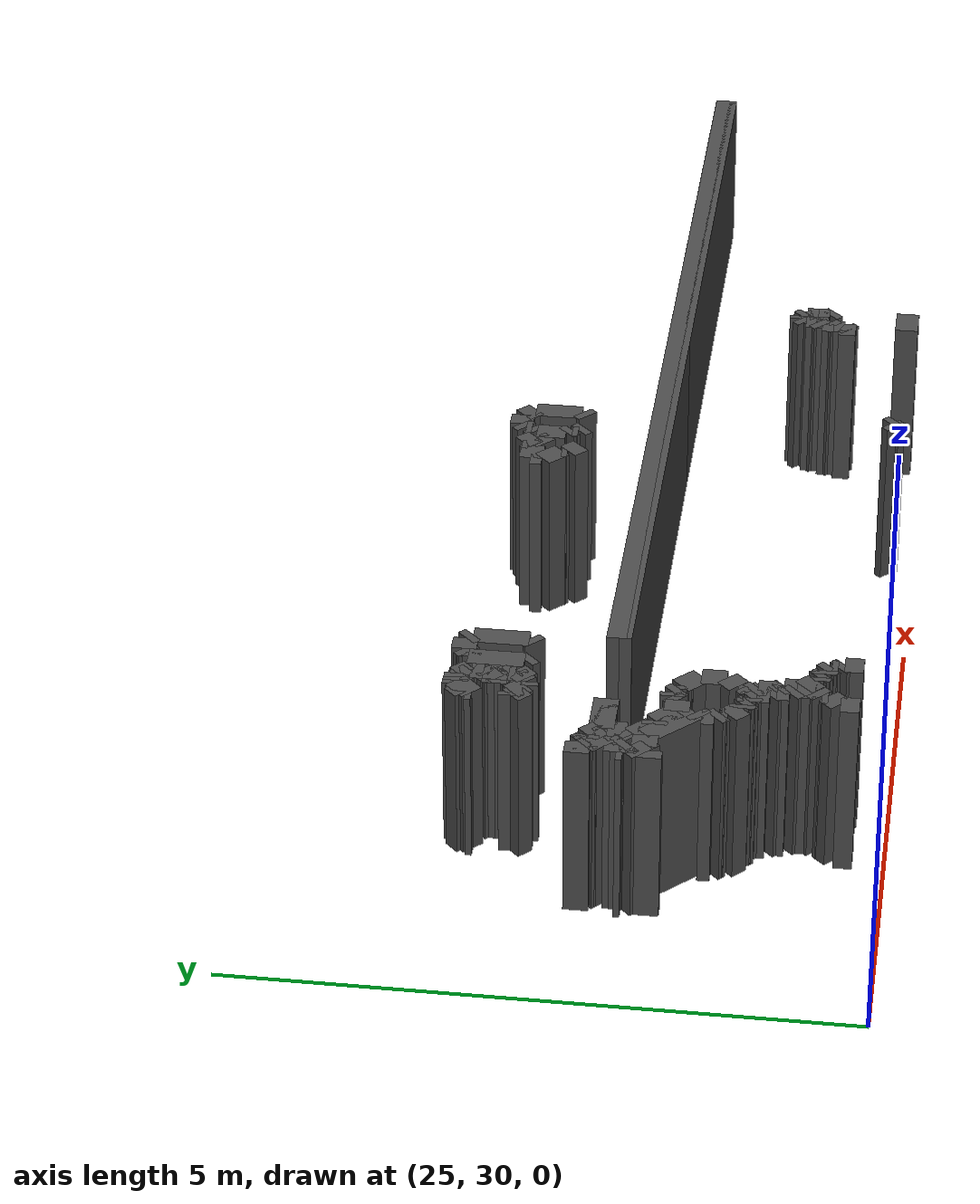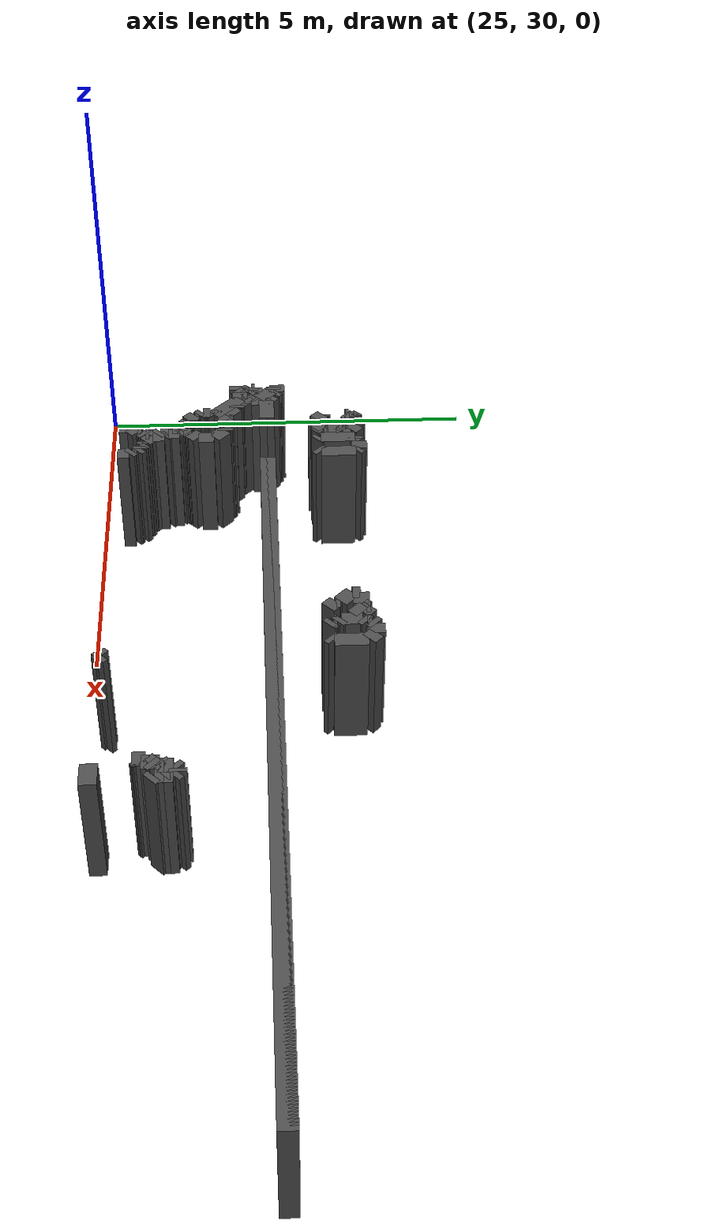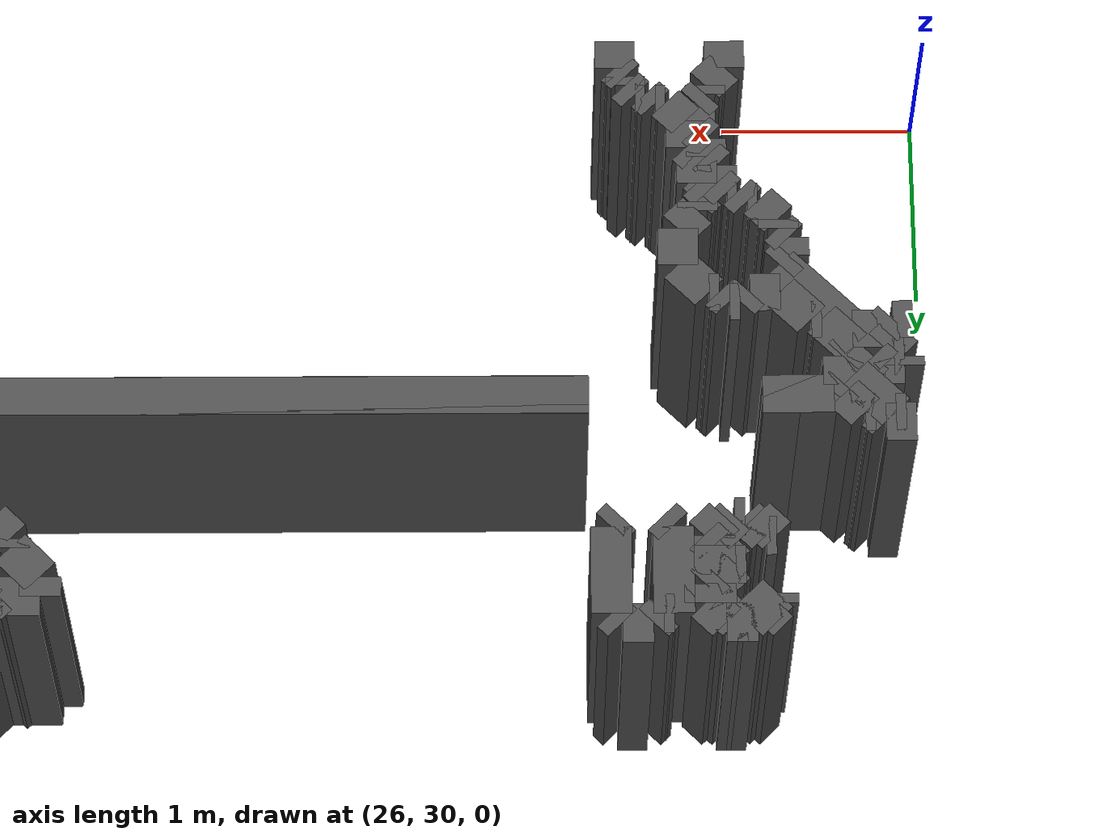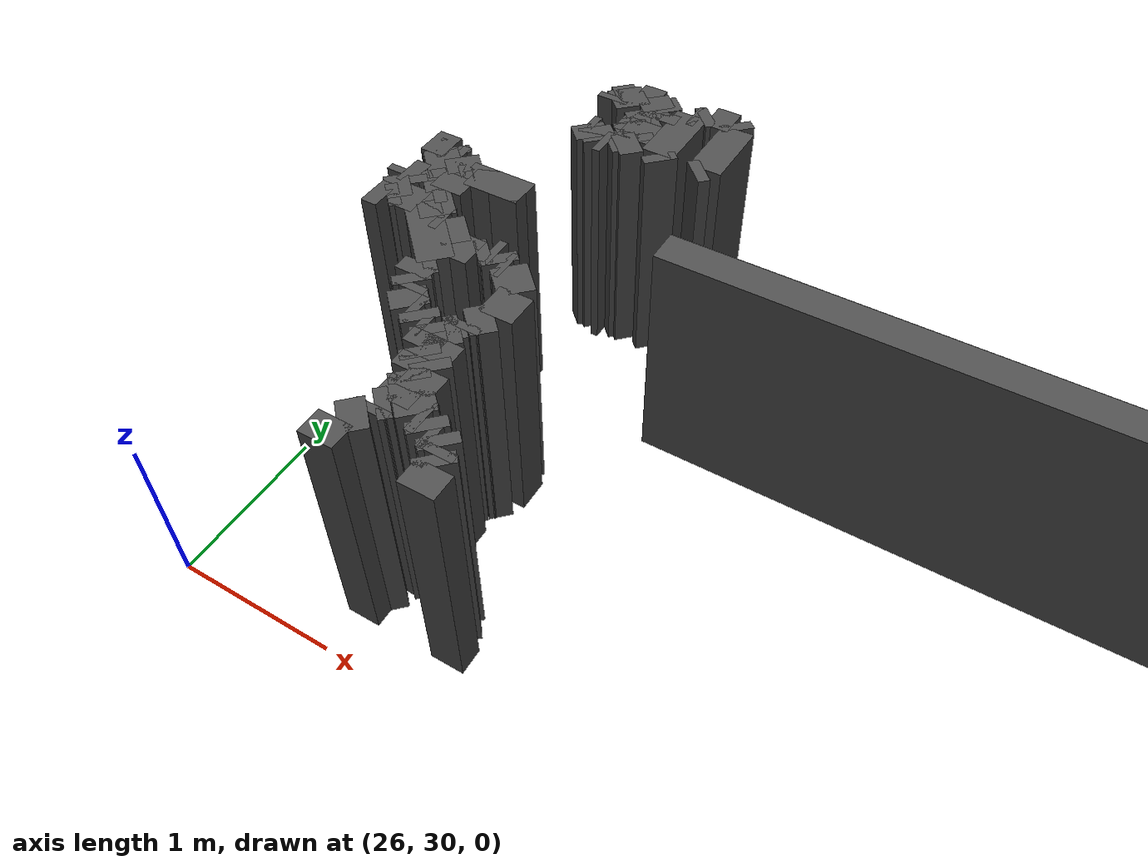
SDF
<sdf version="1.9">
 <model name="generated_walls">
  <static>true</static>
  <link name="wall_9_0">
   <pose>30.925 32.875 0.75 0 0 2.356</pose>
   <collision name="collision"><geometry><box><size>0.071 0.2 1.5</size></box></geometry></collision>
   <visual name="visual">
    <geometry><box><size>0.071 0.2 1.5</size></box></geometry>
    <material><ambient>0.3 0.3 0.3 1</ambient></material>
   </visual>
  </link>
  <link name="wall_9_1">
   <pose>30.900 32.925 0.75 0 0 1.571</pose>
   <collision name="collision"><geometry><box><size>0.050 0.2 1.5</size></box></geometry></collision>
   <visual name="visual">
    <geometry><box><size>0.050 0.2 1.5</size></box></geometry>
    <material><ambient>0.3 0.3 0.3 1</ambient></material>
   </visual>
  </link>
  <link name="wall_9_2">
   <pose>30.875 32.975 0.75 0 0 2.356</pose>
   <collision name="collision"><geometry><box><size>0.071 0.2 1.5</size></box></geometry></collision>
   <visual name="visual">
    <geometry><box><size>0.071 0.2 1.5</size></box></geometry>
    <material><ambient>0.3 0.3 0.3 1</ambient></material>
   </visual>
  </link>
  <link name="wall_9_3">
   <pose>30.850 33.125 0.75 0 0 1.571</pose>
   <collision name="collision"><geometry><box><size>0.250 0.2 1.5</size></box></geometry></collision>
   <visual name="visual">
    <geometry><box><size>0.250 0.2 1.5</size></box></geometry>
    <material><ambient>0.3 0.3 0.3 1</ambient></material>
   </visual>
  </link>
  <link name="wall_9_4">
   <pose>30.875 33.275 0.75 0 0 0.785</pose>
   <collision name="collision"><geometry><box><size>0.071 0.2 1.5</size></box></geometry></collision>
   <visual name="visual">
    <geometry><box><size>0.071 0.2 1.5</size></box></geometry>
    <material><ambient>0.3 0.3 0.3 1</ambient></material>
   </visual>
  </link>
  <link name="wall_9_5">
   <pose>30.900 33.325 0.75 0 0 1.571</pose>
   <collision name="collision"><geometry><box><size>0.050 0.2 1.5</size></box></geometry></collision>
   <visual name="visual">
    <geometry><box><size>0.050 0.2 1.5</size></box></geometry>
    <material><ambient>0.3 0.3 0.3 1</ambient></material>
   </visual>
  </link>
  <link name="wall_9_6">
   <pose>30.925 33.375 0.75 0 0 0.785</pose>
   <collision name="collision"><geometry><box><size>0.071 0.2 1.5</size></box></geometry></collision>
   <visual name="visual">
    <geometry><box><size>0.071 0.2 1.5</size></box></geometry>
    <material><ambient>0.3 0.3 0.3 1</ambient></material>
   </visual>
  </link>
  <link name="wall_9_7">
   <pose>31.025 33.400 0.75 0 0 0.000</pose>
   <collision name="collision"><geometry><box><size>0.150 0.2 1.5</size></box></geometry></collision>
   <visual name="visual">
    <geometry><box><size>0.150 0.2 1.5</size></box></geometry>
    <material><ambient>0.3 0.3 0.3 1</ambient></material>
   </visual>
  </link>
  <link name="wall_9_8">
   <pose>31.150 33.350 0.75 0 0 -0.785</pose>
   <collision name="collision"><geometry><box><size>0.141 0.2 1.5</size></box></geometry></collision>
   <visual name="visual">
    <geometry><box><size>0.141 0.2 1.5</size></box></geometry>
    <material><ambient>0.3 0.3 0.3 1</ambient></material>
   </visual>
  </link>
  <link name="wall_9_9">
   <pose>31.200 33.100 0.75 0 0 -1.571</pose>
   <collision name="collision"><geometry><box><size>0.400 0.2 1.5</size></box></geometry></collision>
   <visual name="visual">
    <geometry><box><size>0.400 0.2 1.5</size></box></geometry>
    <material><ambient>0.3 0.3 0.3 1</ambient></material>
   </visual>
  </link>
  <link name="wall_9_10">
   <pose>31.175 32.875 0.75 0 0 -2.356</pose>
   <collision name="collision"><geometry><box><size>0.071 0.2 1.5</size></box></geometry></collision>
   <visual name="visual">
    <geometry><box><size>0.071 0.2 1.5</size></box></geometry>
    <material><ambient>0.3 0.3 0.3 1</ambient></material>
   </visual>
  </link>
  <link name="wall_10_0">
   <pose>30.600 32.900 0.75 0 0 2.356</pose>
   <collision name="collision"><geometry><box><size>0.141 0.2 1.5</size></box></geometry></collision>
   <visual name="visual">
    <geometry><box><size>0.141 0.2 1.5</size></box></geometry>
    <material><ambient>0.3 0.3 0.3 1</ambient></material>
   </visual>
  </link>
  <link name="wall_10_1">
   <pose>30.550 32.975 0.75 0 0 1.571</pose>
   <collision name="collision"><geometry><box><size>0.050 0.2 1.5</size></box></geometry></collision>
   <visual name="visual">
    <geometry><box><size>0.050 0.2 1.5</size></box></geometry>
    <material><ambient>0.3 0.3 0.3 1</ambient></material>
   </visual>
  </link>
  <link name="wall_10_2">
   <pose>30.475 33.075 0.75 0 0 2.356</pose>
   <collision name="collision"><geometry><box><size>0.212 0.2 1.5</size></box></geometry></collision>
   <visual name="visual">
    <geometry><box><size>0.212 0.2 1.5</size></box></geometry>
    <material><ambient>0.3 0.3 0.3 1</ambient></material>
   </visual>
  </link>
  <link name="wall_10_3">
   <pose>30.400 33.200 0.75 0 0 1.571</pose>
   <collision name="collision"><geometry><box><size>0.100 0.2 1.5</size></box></geometry></collision>
   <visual name="visual">
    <geometry><box><size>0.100 0.2 1.5</size></box></geometry>
    <material><ambient>0.3 0.3 0.3 1</ambient></material>
   </visual>
  </link>
  <link name="wall_10_4">
   <pose>30.500 33.250 0.75 0 0 0.000</pose>
   <collision name="collision"><geometry><box><size>0.200 0.2 1.5</size></box></geometry></collision>
   <visual name="visual">
    <geometry><box><size>0.200 0.2 1.5</size></box></geometry>
    <material><ambient>0.3 0.3 0.3 1</ambient></material>
   </visual>
  </link>
  <link name="wall_10_5">
   <pose>30.625 33.275 0.75 0 0 0.785</pose>
   <collision name="collision"><geometry><box><size>0.071 0.2 1.5</size></box></geometry></collision>
   <visual name="visual">
    <geometry><box><size>0.071 0.2 1.5</size></box></geometry>
    <material><ambient>0.3 0.3 0.3 1</ambient></material>
   </visual>
  </link>
  <link name="wall_10_6">
   <pose>30.650 33.325 0.75 0 0 1.571</pose>
   <collision name="collision"><geometry><box><size>0.050 0.2 1.5</size></box></geometry></collision>
   <visual name="visual">
    <geometry><box><size>0.050 0.2 1.5</size></box></geometry>
    <material><ambient>0.3 0.3 0.3 1</ambient></material>
   </visual>
  </link>
  <link name="wall_10_7">
   <pose>30.700 33.300 0.75 0 0 -0.785</pose>
   <collision name="collision"><geometry><box><size>0.141 0.2 1.5</size></box></geometry></collision>
   <visual name="visual">
    <geometry><box><size>0.141 0.2 1.5</size></box></geometry>
    <material><ambient>0.3 0.3 0.3 1</ambient></material>
   </visual>
  </link>
  <link name="wall_10_8">
   <pose>30.700 33.200 0.75 0 0 -2.356</pose>
   <collision name="collision"><geometry><box><size>0.141 0.2 1.5</size></box></geometry></collision>
   <visual name="visual">
    <geometry><box><size>0.141 0.2 1.5</size></box></geometry>
    <material><ambient>0.3 0.3 0.3 1</ambient></material>
   </visual>
  </link>
  <link name="wall_11_0">
   <pose>27.375 32.875 0.75 0 0 2.356</pose>
   <collision name="collision"><geometry><box><size>0.071 0.2 1.5</size></box></geometry></collision>
   <visual name="visual">
    <geometry><box><size>0.071 0.2 1.5</size></box></geometry>
    <material><ambient>0.3 0.3 0.3 1</ambient></material>
   </visual>
  </link>
  <link name="wall_11_1">
   <pose>27.350 33.125 0.75 0 0 1.571</pose>
   <collision name="collision"><geometry><box><size>0.450 0.2 1.5</size></box></geometry></collision>
   <visual name="visual">
    <geometry><box><size>0.450 0.2 1.5</size></box></geometry>
    <material><ambient>0.3 0.3 0.3 1</ambient></material>
   </visual>
  </link>
  <link name="wall_11_2">
   <pose>27.375 33.350 0.75 0 0 0.000</pose>
   <collision name="collision"><geometry><box><size>0.050 0.2 1.5</size></box></geometry></collision>
   <visual name="visual">
    <geometry><box><size>0.050 0.2 1.5</size></box></geometry>
    <material><ambient>0.3 0.3 0.3 1</ambient></material>
   </visual>
  </link>
  <link name="wall_11_3">
   <pose>27.425 33.375 0.75 0 0 0.785</pose>
   <collision name="collision"><geometry><box><size>0.071 0.2 1.5</size></box></geometry></collision>
   <visual name="visual">
    <geometry><box><size>0.071 0.2 1.5</size></box></geometry>
    <material><ambient>0.3 0.3 0.3 1</ambient></material>
   </visual>
  </link>
  <link name="wall_11_4">
   <pose>27.525 33.400 0.75 0 0 0.000</pose>
   <collision name="collision"><geometry><box><size>0.150 0.2 1.5</size></box></geometry></collision>
   <visual name="visual">
    <geometry><box><size>0.150 0.2 1.5</size></box></geometry>
    <material><ambient>0.3 0.3 0.3 1</ambient></material>
   </visual>
  </link>
  <link name="wall_11_5">
   <pose>27.625 33.375 0.75 0 0 -0.785</pose>
   <collision name="collision"><geometry><box><size>0.071 0.2 1.5</size></box></geometry></collision>
   <visual name="visual">
    <geometry><box><size>0.071 0.2 1.5</size></box></geometry>
    <material><ambient>0.3 0.3 0.3 1</ambient></material>
   </visual>
  </link>
  <link name="wall_11_6">
   <pose>27.650 33.125 0.75 0 0 -1.571</pose>
   <collision name="collision"><geometry><box><size>0.450 0.2 1.5</size></box></geometry></collision>
   <visual name="visual">
    <geometry><box><size>0.450 0.2 1.5</size></box></geometry>
    <material><ambient>0.3 0.3 0.3 1</ambient></material>
   </visual>
  </link>
  <link name="wall_11_7">
   <pose>27.625 32.875 0.75 0 0 -2.356</pose>
   <collision name="collision"><geometry><box><size>0.071 0.2 1.5</size></box></geometry></collision>
   <visual name="visual">
    <geometry><box><size>0.071 0.2 1.5</size></box></geometry>
    <material><ambient>0.3 0.3 0.3 1</ambient></material>
   </visual>
  </link>
  <link name="wall_12_0">
   <pose>26.900 32.900 0.75 0 0 2.356</pose>
   <collision name="collision"><geometry><box><size>0.141 0.2 1.5</size></box></geometry></collision>
   <visual name="visual">
    <geometry><box><size>0.141 0.2 1.5</size></box></geometry>
    <material><ambient>0.3 0.3 0.3 1</ambient></material>
   </visual>
  </link>
  <link name="wall_12_1">
   <pose>26.875 32.950 0.75 0 0 0.000</pose>
   <collision name="collision"><geometry><box><size>0.050 0.2 1.5</size></box></geometry></collision>
   <visual name="visual">
    <geometry><box><size>0.050 0.2 1.5</size></box></geometry>
    <material><ambient>0.3 0.3 0.3 1</ambient></material>
   </visual>
  </link>
  <link name="wall_12_2">
   <pose>26.950 32.900 0.75 0 0 -0.785</pose>
   <collision name="collision"><geometry><box><size>0.141 0.2 1.5</size></box></geometry></collision>
   <visual name="visual">
    <geometry><box><size>0.141 0.2 1.5</size></box></geometry>
    <material><ambient>0.3 0.3 0.3 1</ambient></material>
   </visual>
  </link>
  <link name="wall_12_3">
   <pose>27.025 32.850 0.75 0 0 0.000</pose>
   <collision name="collision"><geometry><box><size>0.050 0.2 1.5</size></box></geometry></collision>
   <visual name="visual">
    <geometry><box><size>0.050 0.2 1.5</size></box></geometry>
    <material><ambient>0.3 0.3 0.3 1</ambient></material>
   </visual>
  </link>
  <link name="wall_12_4">
   <pose>27.100 32.900 0.75 0 0 0.785</pose>
   <collision name="collision"><geometry><box><size>0.141 0.2 1.5</size></box></geometry></collision>
   <visual name="visual">
    <geometry><box><size>0.141 0.2 1.5</size></box></geometry>
    <material><ambient>0.3 0.3 0.3 1</ambient></material>
   </visual>
  </link>
  <link name="wall_12_5">
   <pose>27.150 32.975 0.75 0 0 1.571</pose>
   <collision name="collision"><geometry><box><size>0.050 0.2 1.5</size></box></geometry></collision>
   <visual name="visual">
    <geometry><box><size>0.050 0.2 1.5</size></box></geometry>
    <material><ambient>0.3 0.3 0.3 1</ambient></material>
   </visual>
  </link>
  <link name="wall_12_6">
   <pose>27.100 33.050 0.75 0 0 2.356</pose>
   <collision name="collision"><geometry><box><size>0.141 0.2 1.5</size></box></geometry></collision>
   <visual name="visual">
    <geometry><box><size>0.141 0.2 1.5</size></box></geometry>
    <material><ambient>0.3 0.3 0.3 1</ambient></material>
   </visual>
  </link>
  <link name="wall_12_7">
   <pose>27.025 33.100 0.75 0 0 3.142</pose>
   <collision name="collision"><geometry><box><size>0.050 0.2 1.5</size></box></geometry></collision>
   <visual name="visual">
    <geometry><box><size>0.050 0.2 1.5</size></box></geometry>
    <material><ambient>0.3 0.3 0.3 1</ambient></material>
   </visual>
  </link>
  <link name="wall_12_8">
   <pose>27.025 33.100 0.75 0 0 0.000</pose>
   <collision name="collision"><geometry><box><size>0.050 0.2 1.5</size></box></geometry></collision>
   <visual name="visual">
    <geometry><box><size>0.050 0.2 1.5</size></box></geometry>
    <material><ambient>0.3 0.3 0.3 1</ambient></material>
   </visual>
  </link>
  <link name="wall_12_9">
   <pose>27.100 33.150 0.75 0 0 0.785</pose>
   <collision name="collision"><geometry><box><size>0.141 0.2 1.5</size></box></geometry></collision>
   <visual name="visual">
    <geometry><box><size>0.141 0.2 1.5</size></box></geometry>
    <material><ambient>0.3 0.3 0.3 1</ambient></material>
   </visual>
  </link>
  <link name="wall_12_10">
   <pose>27.150 33.250 0.75 0 0 1.571</pose>
   <collision name="collision"><geometry><box><size>0.100 0.2 1.5</size></box></geometry></collision>
   <visual name="visual">
    <geometry><box><size>0.100 0.2 1.5</size></box></geometry>
    <material><ambient>0.3 0.3 0.3 1</ambient></material>
   </visual>
  </link>
  <link name="wall_12_11">
   <pose>27.100 33.350 0.75 0 0 2.356</pose>
   <collision name="collision"><geometry><box><size>0.141 0.2 1.5</size></box></geometry></collision>
   <visual name="visual">
    <geometry><box><size>0.141 0.2 1.5</size></box></geometry>
    <material><ambient>0.3 0.3 0.3 1</ambient></material>
   </visual>
  </link>
  <link name="wall_12_12">
   <pose>27.025 33.400 0.75 0 0 3.142</pose>
   <collision name="collision"><geometry><box><size>0.050 0.2 1.5</size></box></geometry></collision>
   <visual name="visual">
    <geometry><box><size>0.050 0.2 1.5</size></box></geometry>
    <material><ambient>0.3 0.3 0.3 1</ambient></material>
   </visual>
  </link>
  <link name="wall_12_13">
   <pose>26.925 33.325 0.75 0 0 -2.356</pose>
   <collision name="collision"><geometry><box><size>0.212 0.2 1.5</size></box></geometry></collision>
   <visual name="visual">
    <geometry><box><size>0.212 0.2 1.5</size></box></geometry>
    <material><ambient>0.3 0.3 0.3 1</ambient></material>
   </visual>
  </link>
  <link name="wall_12_14">
   <pose>26.850 33.275 0.75 0 0 1.571</pose>
   <collision name="collision"><geometry><box><size>0.050 0.2 1.5</size></box></geometry></collision>
   <visual name="visual">
    <geometry><box><size>0.050 0.2 1.5</size></box></geometry>
    <material><ambient>0.3 0.3 0.3 1</ambient></material>
   </visual>
  </link>
  <link name="wall_12_15">
   <pose>26.900 33.350 0.75 0 0 0.785</pose>
   <collision name="collision"><geometry><box><size>0.141 0.2 1.5</size></box></geometry></collision>
   <visual name="visual">
    <geometry><box><size>0.141 0.2 1.5</size></box></geometry>
    <material><ambient>0.3 0.3 0.3 1</ambient></material>
   </visual>
  </link>
  <link name="wall_12_16">
   <pose>27.025 33.400 0.75 0 0 0.000</pose>
   <collision name="collision"><geometry><box><size>0.150 0.2 1.5</size></box></geometry></collision>
   <visual name="visual">
    <geometry><box><size>0.150 0.2 1.5</size></box></geometry>
    <material><ambient>0.3 0.3 0.3 1</ambient></material>
   </visual>
  </link>
  <link name="wall_12_17">
   <pose>27.150 33.350 0.75 0 0 -0.785</pose>
   <collision name="collision"><geometry><box><size>0.141 0.2 1.5</size></box></geometry></collision>
   <visual name="visual">
    <geometry><box><size>0.141 0.2 1.5</size></box></geometry>
    <material><ambient>0.3 0.3 0.3 1</ambient></material>
   </visual>
  </link>
  <link name="wall_12_18">
   <pose>27.200 33.250 0.75 0 0 -1.571</pose>
   <collision name="collision"><geometry><box><size>0.100 0.2 1.5</size></box></geometry></collision>
   <visual name="visual">
    <geometry><box><size>0.100 0.2 1.5</size></box></geometry>
    <material><ambient>0.3 0.3 0.3 1</ambient></material>
   </visual>
  </link>
  <link name="wall_12_19">
   <pose>27.175 33.175 0.75 0 0 -2.356</pose>
   <collision name="collision"><geometry><box><size>0.071 0.2 1.5</size></box></geometry></collision>
   <visual name="visual">
    <geometry><box><size>0.071 0.2 1.5</size></box></geometry>
    <material><ambient>0.3 0.3 0.3 1</ambient></material>
   </visual>
  </link>
  <link name="wall_12_20">
   <pose>27.150 33.075 0.75 0 0 -1.571</pose>
   <collision name="collision"><geometry><box><size>0.150 0.2 1.5</size></box></geometry></collision>
   <visual name="visual">
    <geometry><box><size>0.150 0.2 1.5</size></box></geometry>
    <material><ambient>0.3 0.3 0.3 1</ambient></material>
   </visual>
  </link>
  <link name="wall_12_21">
   <pose>27.175 32.975 0.75 0 0 -0.785</pose>
   <collision name="collision"><geometry><box><size>0.071 0.2 1.5</size></box></geometry></collision>
   <visual name="visual">
    <geometry><box><size>0.071 0.2 1.5</size></box></geometry>
    <material><ambient>0.3 0.3 0.3 1</ambient></material>
   </visual>
  </link>
  <link name="wall_12_22">
   <pose>27.150 32.900 0.75 0 0 -2.356</pose>
   <collision name="collision"><geometry><box><size>0.141 0.2 1.5</size></box></geometry></collision>
   <visual name="visual">
    <geometry><box><size>0.141 0.2 1.5</size></box></geometry>
    <material><ambient>0.3 0.3 0.3 1</ambient></material>
   </visual>
  </link>
  <link name="wall_43_0">
   <pose>32.950 30.725 0.75 0 0 1.571</pose>
   <collision name="collision"><geometry><box><size>0.150 0.2 1.5</size></box></geometry></collision>
   <visual name="visual">
    <geometry><box><size>0.150 0.2 1.5</size></box></geometry>
    <material><ambient>0.3 0.3 0.3 1</ambient></material>
   </visual>
  </link>
  <link name="wall_43_1">
   <pose>32.975 30.825 0.75 0 0 0.785</pose>
   <collision name="collision"><geometry><box><size>0.071 0.2 1.5</size></box></geometry></collision>
   <visual name="visual">
    <geometry><box><size>0.071 0.2 1.5</size></box></geometry>
    <material><ambient>0.3 0.3 0.3 1</ambient></material>
   </visual>
  </link>
  <link name="wall_43_2">
   <pose>33.000 30.900 0.75 0 0 1.571</pose>
   <collision name="collision"><geometry><box><size>0.100 0.2 1.5</size></box></geometry></collision>
   <visual name="visual">
    <geometry><box><size>0.100 0.2 1.5</size></box></geometry>
    <material><ambient>0.3 0.3 0.3 1</ambient></material>
   </visual>
  </link>
  <link name="wall_43_3">
   <pose>33.025 30.975 0.75 0 0 0.785</pose>
   <collision name="collision"><geometry><box><size>0.071 0.2 1.5</size></box></geometry></collision>
   <visual name="visual">
    <geometry><box><size>0.071 0.2 1.5</size></box></geometry>
    <material><ambient>0.3 0.3 0.3 1</ambient></material>
   </visual>
  </link>
  <link name="wall_43_4">
   <pose>33.050 31.050 0.75 0 0 1.571</pose>
   <collision name="collision"><geometry><box><size>0.100 0.2 1.5</size></box></geometry></collision>
   <visual name="visual">
    <geometry><box><size>0.100 0.2 1.5</size></box></geometry>
    <material><ambient>0.3 0.3 0.3 1</ambient></material>
   </visual>
  </link>
  <link name="wall_43_5">
   <pose>33.075 31.125 0.75 0 0 0.785</pose>
   <collision name="collision"><geometry><box><size>0.071 0.2 1.5</size></box></geometry></collision>
   <visual name="visual">
    <geometry><box><size>0.071 0.2 1.5</size></box></geometry>
    <material><ambient>0.3 0.3 0.3 1</ambient></material>
   </visual>
  </link>
  <link name="wall_43_6">
   <pose>33.125 31.150 0.75 0 0 0.000</pose>
   <collision name="collision"><geometry><box><size>0.050 0.2 1.5</size></box></geometry></collision>
   <visual name="visual">
    <geometry><box><size>0.050 0.2 1.5</size></box></geometry>
    <material><ambient>0.3 0.3 0.3 1</ambient></material>
   </visual>
  </link>
  <link name="wall_43_7">
   <pose>33.175 31.125 0.75 0 0 -0.785</pose>
   <collision name="collision"><geometry><box><size>0.071 0.2 1.5</size></box></geometry></collision>
   <visual name="visual">
    <geometry><box><size>0.071 0.2 1.5</size></box></geometry>
    <material><ambient>0.3 0.3 0.3 1</ambient></material>
   </visual>
  </link>
  <link name="wall_43_8">
   <pose>33.200 31.050 0.75 0 0 -1.571</pose>
   <collision name="collision"><geometry><box><size>0.100 0.2 1.5</size></box></geometry></collision>
   <visual name="visual">
    <geometry><box><size>0.100 0.2 1.5</size></box></geometry>
    <material><ambient>0.3 0.3 0.3 1</ambient></material>
   </visual>
  </link>
  <link name="wall_43_17">
   <pose>33.225 30.875 0.75 0 0 2.356</pose>
   <collision name="collision"><geometry><box><size>0.071 0.2 1.5</size></box></geometry></collision>
   <visual name="visual">
    <geometry><box><size>0.071 0.2 1.5</size></box></geometry>
    <material><ambient>0.3 0.3 0.3 1</ambient></material>
   </visual>
  </link>
  <link name="wall_43_18">
   <pose>33.200 30.950 0.75 0 0 1.571</pose>
   <collision name="collision"><geometry><box><size>0.100 0.2 1.5</size></box></geometry></collision>
   <visual name="visual">
    <geometry><box><size>0.100 0.2 1.5</size></box></geometry>
    <material><ambient>0.3 0.3 0.3 1</ambient></material>
   </visual>
  </link>
  <link name="wall_43_19">
   <pose>33.175 31.025 0.75 0 0 2.356</pose>
   <collision name="collision"><geometry><box><size>0.071 0.2 1.5</size></box></geometry></collision>
   <visual name="visual">
    <geometry><box><size>0.071 0.2 1.5</size></box></geometry>
    <material><ambient>0.3 0.3 0.3 1</ambient></material>
   </visual>
  </link>
  <link name="wall_43_20">
   <pose>33.125 31.050 0.75 0 0 3.142</pose>
   <collision name="collision"><geometry><box><size>0.050 0.2 1.5</size></box></geometry></collision>
   <visual name="visual">
    <geometry><box><size>0.050 0.2 1.5</size></box></geometry>
    <material><ambient>0.3 0.3 0.3 1</ambient></material>
   </visual>
  </link>
  <link name="wall_43_21">
   <pose>33.075 31.025 0.75 0 0 -2.356</pose>
   <collision name="collision"><geometry><box><size>0.071 0.2 1.5</size></box></geometry></collision>
   <visual name="visual">
    <geometry><box><size>0.071 0.2 1.5</size></box></geometry>
    <material><ambient>0.3 0.3 0.3 1</ambient></material>
   </visual>
  </link>
  <link name="wall_43_22">
   <pose>33.050 30.950 0.75 0 0 -1.571</pose>
   <collision name="collision"><geometry><box><size>0.100 0.2 1.5</size></box></geometry></collision>
   <visual name="visual">
    <geometry><box><size>0.100 0.2 1.5</size></box></geometry>
    <material><ambient>0.3 0.3 0.3 1</ambient></material>
   </visual>
  </link>
  <link name="wall_43_23">
   <pose>33.025 30.875 0.75 0 0 -2.356</pose>
   <collision name="collision"><geometry><box><size>0.071 0.2 1.5</size></box></geometry></collision>
   <visual name="visual">
    <geometry><box><size>0.071 0.2 1.5</size></box></geometry>
    <material><ambient>0.3 0.3 0.3 1</ambient></material>
   </visual>
  </link>
  <link name="wall_43_24">
   <pose>33.000 30.800 0.75 0 0 -1.571</pose>
   <collision name="collision"><geometry><box><size>0.100 0.2 1.5</size></box></geometry></collision>
   <visual name="visual">
    <geometry><box><size>0.100 0.2 1.5</size></box></geometry>
    <material><ambient>0.3 0.3 0.3 1</ambient></material>
   </visual>
  </link>
  <link name="wall_43_25">
   <pose>32.975 30.725 0.75 0 0 -2.356</pose>
   <collision name="collision"><geometry><box><size>0.071 0.2 1.5</size></box></geometry></collision>
   <visual name="visual">
    <geometry><box><size>0.071 0.2 1.5</size></box></geometry>
    <material><ambient>0.3 0.3 0.3 1</ambient></material>
   </visual>
  </link>
  <link name="wall_55_3">
   <pose>33.150 30.200 0.75 0 0 0.000</pose>
   <collision name="collision"><geometry><box><size>0.300 0.2 1.5</size></box></geometry></collision>
   <visual name="visual">
    <geometry><box><size>0.300 0.2 1.5</size></box></geometry>
    <material><ambient>0.3 0.3 0.3 1</ambient></material>
   </visual>
  </link>
  <link name="wall_56_13">
   <pose>31.325 30.225 0.75 0 0 0.785</pose>
   <collision name="collision"><geometry><box><size>0.071 0.2 1.5</size></box></geometry></collision>
   <visual name="visual">
    <geometry><box><size>0.071 0.2 1.5</size></box></geometry>
    <material><ambient>0.3 0.3 0.3 1</ambient></material>
   </visual>
  </link>
  <link name="wall_56_14">
   <pose>31.375 30.225 0.75 0 0 -0.785</pose>
   <collision name="collision"><geometry><box><size>0.071 0.2 1.5</size></box></geometry></collision>
   <visual name="visual">
    <geometry><box><size>0.071 0.2 1.5</size></box></geometry>
    <material><ambient>0.3 0.3 0.3 1</ambient></material>
   </visual>
  </link>
  <link name="wall_155_28">
   <pose>32.550 32.200 0.75 0 0 3.142</pose>
   <collision name="collision"><geometry><box><size>9.600 0.2 1.5</size></box></geometry></collision>
   <visual name="visual">
    <geometry><box><size>9.600 0.2 1.5</size></box></geometry>
    <material><ambient>0.3 0.3 0.3 1</ambient></material>
   </visual>
  </link>
  <link name="wall_155_29">
   <pose>32.575 32.200 0.75 0 0 0.000</pose>
   <collision name="collision"><geometry><box><size>9.650 0.2 1.5</size></box></geometry></collision>
   <visual name="visual">
    <geometry><box><size>9.650 0.2 1.5</size></box></geometry>
    <material><ambient>0.3 0.3 0.3 1</ambient></material>
   </visual>
  </link>
  <link name="wall_161_2054">
   <pose>27.050 30.325 0.75 0 0 1.571</pose>
   <collision name="collision"><geometry><box><size>0.150 0.2 1.5</size></box></geometry></collision>
   <visual name="visual">
    <geometry><box><size>0.150 0.2 1.5</size></box></geometry>
    <material><ambient>0.3 0.3 0.3 1</ambient></material>
   </visual>
  </link>
  <link name="wall_161_2055">
   <pose>27.100 30.450 0.75 0 0 0.785</pose>
   <collision name="collision"><geometry><box><size>0.141 0.2 1.5</size></box></geometry></collision>
   <visual name="visual">
    <geometry><box><size>0.141 0.2 1.5</size></box></geometry>
    <material><ambient>0.3 0.3 0.3 1</ambient></material>
   </visual>
  </link>
  <link name="wall_161_2056">
   <pose>27.150 30.525 0.75 0 0 1.571</pose>
   <collision name="collision"><geometry><box><size>0.050 0.2 1.5</size></box></geometry></collision>
   <visual name="visual">
    <geometry><box><size>0.050 0.2 1.5</size></box></geometry>
    <material><ambient>0.3 0.3 0.3 1</ambient></material>
   </visual>
  </link>
  <link name="wall_161_2057">
   <pose>27.175 30.575 0.75 0 0 0.785</pose>
   <collision name="collision"><geometry><box><size>0.071 0.2 1.5</size></box></geometry></collision>
   <visual name="visual">
    <geometry><box><size>0.071 0.2 1.5</size></box></geometry>
    <material><ambient>0.3 0.3 0.3 1</ambient></material>
   </visual>
  </link>
  <link name="wall_161_2058">
   <pose>27.200 30.675 0.75 0 0 1.571</pose>
   <collision name="collision"><geometry><box><size>0.150 0.2 1.5</size></box></geometry></collision>
   <visual name="visual">
    <geometry><box><size>0.150 0.2 1.5</size></box></geometry>
    <material><ambient>0.3 0.3 0.3 1</ambient></material>
   </visual>
  </link>
  <link name="wall_161_2059">
   <pose>27.175 30.775 0.75 0 0 2.356</pose>
   <collision name="collision"><geometry><box><size>0.071 0.2 1.5</size></box></geometry></collision>
   <visual name="visual">
    <geometry><box><size>0.071 0.2 1.5</size></box></geometry>
    <material><ambient>0.3 0.3 0.3 1</ambient></material>
   </visual>
  </link>
  <link name="wall_161_2060">
   <pose>27.150 30.850 0.75 0 0 1.571</pose>
   <collision name="collision"><geometry><box><size>0.100 0.2 1.5</size></box></geometry></collision>
   <visual name="visual">
    <geometry><box><size>0.100 0.2 1.5</size></box></geometry>
    <material><ambient>0.3 0.3 0.3 1</ambient></material>
   </visual>
  </link>
  <link name="wall_161_2061">
   <pose>27.125 30.925 0.75 0 0 2.356</pose>
   <collision name="collision"><geometry><box><size>0.071 0.2 1.5</size></box></geometry></collision>
   <visual name="visual">
    <geometry><box><size>0.071 0.2 1.5</size></box></geometry>
    <material><ambient>0.3 0.3 0.3 1</ambient></material>
   </visual>
  </link>
  <link name="wall_161_2062">
   <pose>27.100 31.000 0.75 0 0 1.571</pose>
   <collision name="collision"><geometry><box><size>0.100 0.2 1.5</size></box></geometry></collision>
   <visual name="visual">
    <geometry><box><size>0.100 0.2 1.5</size></box></geometry>
    <material><ambient>0.3 0.3 0.3 1</ambient></material>
   </visual>
  </link>
  <link name="wall_161_2063">
   <pose>27.075 31.075 0.75 0 0 2.356</pose>
   <collision name="collision"><geometry><box><size>0.071 0.2 1.5</size></box></geometry></collision>
   <visual name="visual">
    <geometry><box><size>0.071 0.2 1.5</size></box></geometry>
    <material><ambient>0.3 0.3 0.3 1</ambient></material>
   </visual>
  </link>
  <link name="wall_161_2064">
   <pose>27.025 31.100 0.75 0 0 3.142</pose>
   <collision name="collision"><geometry><box><size>0.050 0.2 1.5</size></box></geometry></collision>
   <visual name="visual">
    <geometry><box><size>0.050 0.2 1.5</size></box></geometry>
    <material><ambient>0.3 0.3 0.3 1</ambient></material>
   </visual>
  </link>
  <link name="wall_161_2065">
   <pose>26.975 31.125 0.75 0 0 2.356</pose>
   <collision name="collision"><geometry><box><size>0.071 0.2 1.5</size></box></geometry></collision>
   <visual name="visual">
    <geometry><box><size>0.071 0.2 1.5</size></box></geometry>
    <material><ambient>0.3 0.3 0.3 1</ambient></material>
   </visual>
  </link>
  <link name="wall_161_2066">
   <pose>26.925 31.150 0.75 0 0 3.142</pose>
   <collision name="collision"><geometry><box><size>0.050 0.2 1.5</size></box></geometry></collision>
   <visual name="visual">
    <geometry><box><size>0.050 0.2 1.5</size></box></geometry>
    <material><ambient>0.3 0.3 0.3 1</ambient></material>
   </visual>
  </link>
  <link name="wall_161_2067">
   <pose>26.850 31.200 0.75 0 0 2.356</pose>
   <collision name="collision"><geometry><box><size>0.141 0.2 1.5</size></box></geometry></collision>
   <visual name="visual">
    <geometry><box><size>0.141 0.2 1.5</size></box></geometry>
    <material><ambient>0.3 0.3 0.3 1</ambient></material>
   </visual>
  </link>
  <link name="wall_161_2068">
   <pose>26.800 31.275 0.75 0 0 1.571</pose>
   <collision name="collision"><geometry><box><size>0.050 0.2 1.5</size></box></geometry></collision>
   <visual name="visual">
    <geometry><box><size>0.050 0.2 1.5</size></box></geometry>
    <material><ambient>0.3 0.3 0.3 1</ambient></material>
   </visual>
  </link>
  <link name="wall_161_2069">
   <pose>26.775 31.325 0.75 0 0 2.356</pose>
   <collision name="collision"><geometry><box><size>0.071 0.2 1.5</size></box></geometry></collision>
   <visual name="visual">
    <geometry><box><size>0.071 0.2 1.5</size></box></geometry>
    <material><ambient>0.3 0.3 0.3 1</ambient></material>
   </visual>
  </link>
  <link name="wall_161_2070">
   <pose>26.750 31.400 0.75 0 0 1.571</pose>
   <collision name="collision"><geometry><box><size>0.100 0.2 1.5</size></box></geometry></collision>
   <visual name="visual">
    <geometry><box><size>0.100 0.2 1.5</size></box></geometry>
    <material><ambient>0.3 0.3 0.3 1</ambient></material>
   </visual>
  </link>
  <link name="wall_161_2071">
   <pose>26.775 31.475 0.75 0 0 0.785</pose>
   <collision name="collision"><geometry><box><size>0.071 0.2 1.5</size></box></geometry></collision>
   <visual name="visual">
    <geometry><box><size>0.071 0.2 1.5</size></box></geometry>
    <material><ambient>0.3 0.3 0.3 1</ambient></material>
   </visual>
  </link>
  <link name="wall_161_2072">
   <pose>26.625 31.675 0.75 0 0 2.356</pose>
   <collision name="collision"><geometry><box><size>0.495 0.2 1.5</size></box></geometry></collision>
   <visual name="visual">
    <geometry><box><size>0.495 0.2 1.5</size></box></geometry>
    <material><ambient>0.3 0.3 0.3 1</ambient></material>
   </visual>
  </link>
  <link name="wall_161_2073">
   <pose>26.375 31.850 0.75 0 0 3.142</pose>
   <collision name="collision"><geometry><box><size>0.150 0.2 1.5</size></box></geometry></collision>
   <visual name="visual">
    <geometry><box><size>0.150 0.2 1.5</size></box></geometry>
    <material><ambient>0.3 0.3 0.3 1</ambient></material>
   </visual>
  </link>
  <link name="wall_161_2074">
   <pose>26.275 31.825 0.75 0 0 -2.356</pose>
   <collision name="collision"><geometry><box><size>0.071 0.2 1.5</size></box></geometry></collision>
   <visual name="visual">
    <geometry><box><size>0.071 0.2 1.5</size></box></geometry>
    <material><ambient>0.3 0.3 0.3 1</ambient></material>
   </visual>
  </link>
  <link name="wall_161_2075">
   <pose>26.200 31.800 0.75 0 0 3.142</pose>
   <collision name="collision"><geometry><box><size>0.100 0.2 1.5</size></box></geometry></collision>
   <visual name="visual">
    <geometry><box><size>0.100 0.2 1.5</size></box></geometry>
    <material><ambient>0.3 0.3 0.3 1</ambient></material>
   </visual>
  </link>
  <link name="wall_161_2087">
   <pose>26.250 31.900 0.75 0 0 0.785</pose>
   <collision name="collision"><geometry><box><size>0.141 0.2 1.5</size></box></geometry></collision>
   <visual name="visual">
    <geometry><box><size>0.141 0.2 1.5</size></box></geometry>
    <material><ambient>0.3 0.3 0.3 1</ambient></material>
   </visual>
  </link>
  <link name="wall_161_2088">
   <pose>26.275 31.975 0.75 0 0 2.356</pose>
   <collision name="collision"><geometry><box><size>0.071 0.2 1.5</size></box></geometry></collision>
   <visual name="visual">
    <geometry><box><size>0.071 0.2 1.5</size></box></geometry>
    <material><ambient>0.3 0.3 0.3 1</ambient></material>
   </visual>
  </link>
  <link name="wall_161_2089">
   <pose>26.225 32.000 0.75 0 0 3.142</pose>
   <collision name="collision"><geometry><box><size>0.050 0.2 1.5</size></box></geometry></collision>
   <visual name="visual">
    <geometry><box><size>0.050 0.2 1.5</size></box></geometry>
    <material><ambient>0.3 0.3 0.3 1</ambient></material>
   </visual>
  </link>
  <link name="wall_161_2090">
   <pose>26.200 32.025 0.75 0 0 1.571</pose>
   <collision name="collision"><geometry><box><size>0.050 0.2 1.5</size></box></geometry></collision>
   <visual name="visual">
    <geometry><box><size>0.050 0.2 1.5</size></box></geometry>
    <material><ambient>0.3 0.3 0.3 1</ambient></material>
   </visual>
  </link>
  <link name="wall_161_2091">
   <pose>26.250 32.050 0.75 0 0 0.000</pose>
   <collision name="collision"><geometry><box><size>0.100 0.2 1.5</size></box></geometry></collision>
   <visual name="visual">
    <geometry><box><size>0.100 0.2 1.5</size></box></geometry>
    <material><ambient>0.3 0.3 0.3 1</ambient></material>
   </visual>
  </link>
  <link name="wall_161_2092">
   <pose>26.325 32.025 0.75 0 0 -0.785</pose>
   <collision name="collision"><geometry><box><size>0.071 0.2 1.5</size></box></geometry></collision>
   <visual name="visual">
    <geometry><box><size>0.071 0.2 1.5</size></box></geometry>
    <material><ambient>0.3 0.3 0.3 1</ambient></material>
   </visual>
  </link>
  <link name="wall_161_2093">
   <pose>26.400 32.050 0.75 0 0 0.785</pose>
   <collision name="collision"><geometry><box><size>0.141 0.2 1.5</size></box></geometry></collision>
   <visual name="visual">
    <geometry><box><size>0.141 0.2 1.5</size></box></geometry>
    <material><ambient>0.3 0.3 0.3 1</ambient></material>
   </visual>
  </link>
  <link name="wall_161_2094">
   <pose>26.350 32.200 0.75 0 0 2.356</pose>
   <collision name="collision"><geometry><box><size>0.283 0.2 1.5</size></box></geometry></collision>
   <visual name="visual">
    <geometry><box><size>0.283 0.2 1.5</size></box></geometry>
    <material><ambient>0.3 0.3 0.3 1</ambient></material>
   </visual>
  </link>
  <link name="wall_161_2095">
   <pose>26.225 32.300 0.75 0 0 3.142</pose>
   <collision name="collision"><geometry><box><size>0.050 0.2 1.5</size></box></geometry></collision>
   <visual name="visual">
    <geometry><box><size>0.050 0.2 1.5</size></box></geometry>
    <material><ambient>0.3 0.3 0.3 1</ambient></material>
   </visual>
  </link>
  <link name="wall_161_2101">
   <pose>26.225 32.350 0.75 0 0 0.000</pose>
   <collision name="collision"><geometry><box><size>0.150 0.2 1.5</size></box></geometry></collision>
   <visual name="visual">
    <geometry><box><size>0.150 0.2 1.5</size></box></geometry>
    <material><ambient>0.3 0.3 0.3 1</ambient></material>
   </visual>
  </link>
  <link name="wall_161_2102">
   <pose>26.325 32.325 0.75 0 0 -0.785</pose>
   <collision name="collision"><geometry><box><size>0.071 0.2 1.5</size></box></geometry></collision>
   <visual name="visual">
    <geometry><box><size>0.071 0.2 1.5</size></box></geometry>
    <material><ambient>0.3 0.3 0.3 1</ambient></material>
   </visual>
  </link>
  <link name="wall_161_2103">
   <pose>26.375 32.300 0.75 0 0 0.000</pose>
   <collision name="collision"><geometry><box><size>0.050 0.2 1.5</size></box></geometry></collision>
   <visual name="visual">
    <geometry><box><size>0.050 0.2 1.5</size></box></geometry>
    <material><ambient>0.3 0.3 0.3 1</ambient></material>
   </visual>
  </link>
  <link name="wall_161_2104">
   <pose>26.450 32.250 0.75 0 0 -0.785</pose>
   <collision name="collision"><geometry><box><size>0.141 0.2 1.5</size></box></geometry></collision>
   <visual name="visual">
    <geometry><box><size>0.141 0.2 1.5</size></box></geometry>
    <material><ambient>0.3 0.3 0.3 1</ambient></material>
   </visual>
  </link>
  <link name="wall_161_2105">
   <pose>26.700 32.200 0.75 0 0 0.000</pose>
   <collision name="collision"><geometry><box><size>0.400 0.2 1.5</size></box></geometry></collision>
   <visual name="visual">
    <geometry><box><size>0.400 0.2 1.5</size></box></geometry>
    <material><ambient>0.3 0.3 0.3 1</ambient></material>
   </visual>
  </link>
  <link name="wall_161_2106">
   <pose>26.725 32.200 0.75 0 0 3.142</pose>
   <collision name="collision"><geometry><box><size>0.350 0.2 1.5</size></box></geometry></collision>
   <visual name="visual">
    <geometry><box><size>0.350 0.2 1.5</size></box></geometry>
    <material><ambient>0.3 0.3 0.3 1</ambient></material>
   </visual>
  </link>
  <link name="wall_161_2107">
   <pose>26.525 32.175 0.75 0 0 -2.356</pose>
   <collision name="collision"><geometry><box><size>0.071 0.2 1.5</size></box></geometry></collision>
   <visual name="visual">
    <geometry><box><size>0.071 0.2 1.5</size></box></geometry>
    <material><ambient>0.3 0.3 0.3 1</ambient></material>
   </visual>
  </link>
  <link name="wall_161_2108">
   <pose>26.500 32.075 0.75 0 0 -1.571</pose>
   <collision name="collision"><geometry><box><size>0.150 0.2 1.5</size></box></geometry></collision>
   <visual name="visual">
    <geometry><box><size>0.150 0.2 1.5</size></box></geometry>
    <material><ambient>0.3 0.3 0.3 1</ambient></material>
   </visual>
  </link>
  <link name="wall_161_2109">
   <pose>26.475 31.975 0.75 0 0 -2.356</pose>
   <collision name="collision"><geometry><box><size>0.071 0.2 1.5</size></box></geometry></collision>
   <visual name="visual">
    <geometry><box><size>0.071 0.2 1.5</size></box></geometry>
    <material><ambient>0.3 0.3 0.3 1</ambient></material>
   </visual>
  </link>
  <link name="wall_161_2110">
   <pose>26.525 31.875 0.75 0 0 -0.785</pose>
   <collision name="collision"><geometry><box><size>0.212 0.2 1.5</size></box></geometry></collision>
   <visual name="visual">
    <geometry><box><size>0.212 0.2 1.5</size></box></geometry>
    <material><ambient>0.3 0.3 0.3 1</ambient></material>
   </visual>
  </link>
  <link name="wall_161_2111">
   <pose>26.625 31.800 0.75 0 0 0.000</pose>
   <collision name="collision"><geometry><box><size>0.050 0.2 1.5</size></box></geometry></collision>
   <visual name="visual">
    <geometry><box><size>0.050 0.2 1.5</size></box></geometry>
    <material><ambient>0.3 0.3 0.3 1</ambient></material>
   </visual>
  </link>
  <link name="wall_161_2112">
   <pose>26.725 31.725 0.75 0 0 -0.785</pose>
   <collision name="collision"><geometry><box><size>0.212 0.2 1.5</size></box></geometry></collision>
   <visual name="visual">
    <geometry><box><size>0.212 0.2 1.5</size></box></geometry>
    <material><ambient>0.3 0.3 0.3 1</ambient></material>
   </visual>
  </link>
  <link name="wall_161_2113">
   <pose>26.875 31.650 0.75 0 0 0.000</pose>
   <collision name="collision"><geometry><box><size>0.150 0.2 1.5</size></box></geometry></collision>
   <visual name="visual">
    <geometry><box><size>0.150 0.2 1.5</size></box></geometry>
    <material><ambient>0.3 0.3 0.3 1</ambient></material>
   </visual>
  </link>
  <link name="wall_161_2114">
   <pose>26.975 31.675 0.75 0 0 0.785</pose>
   <collision name="collision"><geometry><box><size>0.071 0.2 1.5</size></box></geometry></collision>
   <visual name="visual">
    <geometry><box><size>0.071 0.2 1.5</size></box></geometry>
    <material><ambient>0.3 0.3 0.3 1</ambient></material>
   </visual>
  </link>
  <link name="wall_161_2115">
   <pose>27.025 31.700 0.75 0 0 0.000</pose>
   <collision name="collision"><geometry><box><size>0.050 0.2 1.5</size></box></geometry></collision>
   <visual name="visual">
    <geometry><box><size>0.050 0.2 1.5</size></box></geometry>
    <material><ambient>0.3 0.3 0.3 1</ambient></material>
   </visual>
  </link>
  <link name="wall_161_2116">
   <pose>27.075 31.675 0.75 0 0 -0.785</pose>
   <collision name="collision"><geometry><box><size>0.071 0.2 1.5</size></box></geometry></collision>
   <visual name="visual">
    <geometry><box><size>0.071 0.2 1.5</size></box></geometry>
    <material><ambient>0.3 0.3 0.3 1</ambient></material>
   </visual>
  </link>
  <link name="wall_161_2117">
   <pose>27.125 31.650 0.75 0 0 0.000</pose>
   <collision name="collision"><geometry><box><size>0.050 0.2 1.5</size></box></geometry></collision>
   <visual name="visual">
    <geometry><box><size>0.050 0.2 1.5</size></box></geometry>
    <material><ambient>0.3 0.3 0.3 1</ambient></material>
   </visual>
  </link>
  <link name="wall_161_2118">
   <pose>27.225 31.575 0.75 0 0 -0.785</pose>
   <collision name="collision"><geometry><box><size>0.212 0.2 1.5</size></box></geometry></collision>
   <visual name="visual">
    <geometry><box><size>0.212 0.2 1.5</size></box></geometry>
    <material><ambient>0.3 0.3 0.3 1</ambient></material>
   </visual>
  </link>
  <link name="wall_161_2119">
   <pose>27.300 31.400 0.75 0 0 -1.571</pose>
   <collision name="collision"><geometry><box><size>0.200 0.2 1.5</size></box></geometry></collision>
   <visual name="visual">
    <geometry><box><size>0.200 0.2 1.5</size></box></geometry>
    <material><ambient>0.3 0.3 0.3 1</ambient></material>
   </visual>
  </link>
  <link name="wall_161_2120">
   <pose>27.250 31.250 0.75 0 0 -2.356</pose>
   <collision name="collision"><geometry><box><size>0.141 0.2 1.5</size></box></geometry></collision>
   <visual name="visual">
    <geometry><box><size>0.141 0.2 1.5</size></box></geometry>
    <material><ambient>0.3 0.3 0.3 1</ambient></material>
   </visual>
  </link>
  <link name="wall_161_2121">
   <pose>27.200 31.175 0.75 0 0 -1.571</pose>
   <collision name="collision"><geometry><box><size>0.050 0.2 1.5</size></box></geometry></collision>
   <visual name="visual">
    <geometry><box><size>0.050 0.2 1.5</size></box></geometry>
    <material><ambient>0.3 0.3 0.3 1</ambient></material>
   </visual>
  </link>
  <link name="wall_161_2122">
   <pose>27.175 31.125 0.75 0 0 -2.356</pose>
   <collision name="collision"><geometry><box><size>0.071 0.2 1.5</size></box></geometry></collision>
   <visual name="visual">
    <geometry><box><size>0.071 0.2 1.5</size></box></geometry>
    <material><ambient>0.3 0.3 0.3 1</ambient></material>
   </visual>
  </link>
  <link name="wall_161_2123">
   <pose>27.175 31.075 0.75 0 0 -0.785</pose>
   <collision name="collision"><geometry><box><size>0.071 0.2 1.5</size></box></geometry></collision>
   <visual name="visual">
    <geometry><box><size>0.071 0.2 1.5</size></box></geometry>
    <material><ambient>0.3 0.3 0.3 1</ambient></material>
   </visual>
  </link>
  <link name="wall_161_2124">
   <pose>27.200 30.975 0.75 0 0 -1.571</pose>
   <collision name="collision"><geometry><box><size>0.150 0.2 1.5</size></box></geometry></collision>
   <visual name="visual">
    <geometry><box><size>0.150 0.2 1.5</size></box></geometry>
    <material><ambient>0.3 0.3 0.3 1</ambient></material>
   </visual>
  </link>
  <link name="wall_161_2125">
   <pose>27.225 30.875 0.75 0 0 -0.785</pose>
   <collision name="collision"><geometry><box><size>0.071 0.2 1.5</size></box></geometry></collision>
   <visual name="visual">
    <geometry><box><size>0.071 0.2 1.5</size></box></geometry>
    <material><ambient>0.3 0.3 0.3 1</ambient></material>
   </visual>
  </link>
  <link name="wall_161_2126">
   <pose>27.250 30.775 0.75 0 0 -1.571</pose>
   <collision name="collision"><geometry><box><size>0.150 0.2 1.5</size></box></geometry></collision>
   <visual name="visual">
    <geometry><box><size>0.150 0.2 1.5</size></box></geometry>
    <material><ambient>0.3 0.3 0.3 1</ambient></material>
   </visual>
  </link>
  <link name="wall_161_2127">
   <pose>27.300 30.650 0.75 0 0 -0.785</pose>
   <collision name="collision"><geometry><box><size>0.141 0.2 1.5</size></box></geometry></collision>
   <visual name="visual">
    <geometry><box><size>0.141 0.2 1.5</size></box></geometry>
    <material><ambient>0.3 0.3 0.3 1</ambient></material>
   </visual>
  </link>
  <link name="wall_161_2128">
   <pose>27.375 30.600 0.75 0 0 0.000</pose>
   <collision name="collision"><geometry><box><size>0.050 0.2 1.5</size></box></geometry></collision>
   <visual name="visual">
    <geometry><box><size>0.050 0.2 1.5</size></box></geometry>
    <material><ambient>0.3 0.3 0.3 1</ambient></material>
   </visual>
  </link>
  <link name="wall_161_2129">
   <pose>27.425 30.575 0.75 0 0 -0.785</pose>
   <collision name="collision"><geometry><box><size>0.071 0.2 1.5</size></box></geometry></collision>
   <visual name="visual">
    <geometry><box><size>0.071 0.2 1.5</size></box></geometry>
    <material><ambient>0.3 0.3 0.3 1</ambient></material>
   </visual>
  </link>
  <link name="wall_161_2130">
   <pose>27.475 30.550 0.75 0 0 0.000</pose>
   <collision name="collision"><geometry><box><size>0.050 0.2 1.5</size></box></geometry></collision>
   <visual name="visual">
    <geometry><box><size>0.050 0.2 1.5</size></box></geometry>
    <material><ambient>0.3 0.3 0.3 1</ambient></material>
   </visual>
  </link>
  <link name="wall_161_2131">
   <pose>27.525 30.525 0.75 0 0 -0.785</pose>
   <collision name="collision"><geometry><box><size>0.071 0.2 1.5</size></box></geometry></collision>
   <visual name="visual">
    <geometry><box><size>0.071 0.2 1.5</size></box></geometry>
    <material><ambient>0.3 0.3 0.3 1</ambient></material>
   </visual>
  </link>
  <link name="wall_161_2132">
   <pose>27.550 30.475 0.75 0 0 -1.571</pose>
   <collision name="collision"><geometry><box><size>0.050 0.2 1.5</size></box></geometry></collision>
   <visual name="visual">
    <geometry><box><size>0.050 0.2 1.5</size></box></geometry>
    <material><ambient>0.3 0.3 0.3 1</ambient></material>
   </visual>
  </link>
  <link name="wall_161_2133">
   <pose>27.575 30.425 0.75 0 0 -0.785</pose>
   <collision name="collision"><geometry><box><size>0.071 0.2 1.5</size></box></geometry></collision>
   <visual name="visual">
    <geometry><box><size>0.071 0.2 1.5</size></box></geometry>
    <material><ambient>0.3 0.3 0.3 1</ambient></material>
   </visual>
  </link>
  <link name="wall_161_2134">
   <pose>27.600 30.325 0.75 0 0 -1.571</pose>
   <collision name="collision"><geometry><box><size>0.150 0.2 1.5</size></box></geometry></collision>
   <visual name="visual">
    <geometry><box><size>0.150 0.2 1.5</size></box></geometry>
    <material><ambient>0.3 0.3 0.3 1</ambient></material>
   </visual>
  </link>
 </model>
</sdf>
